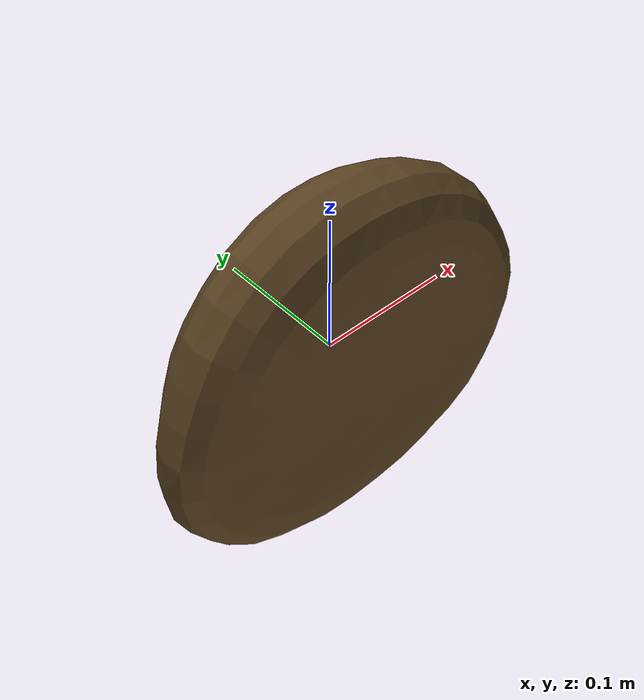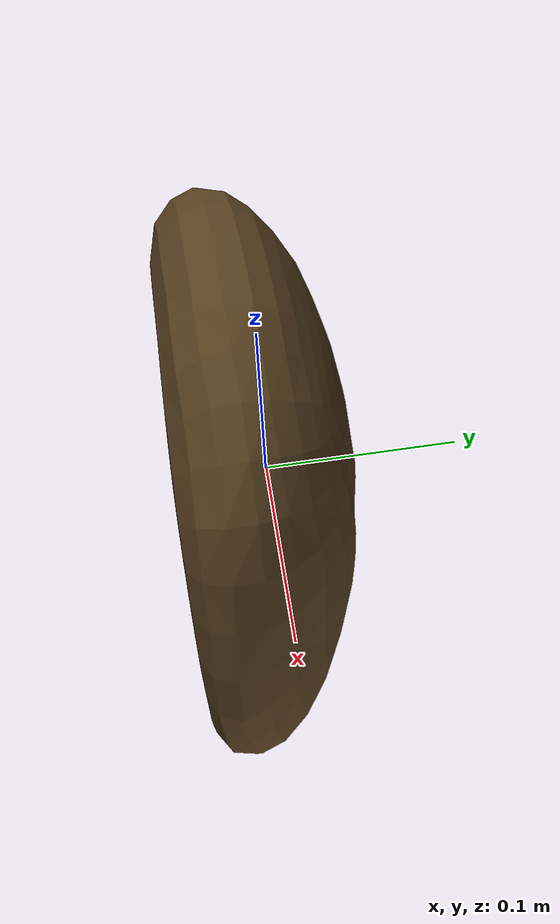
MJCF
<mujoco model="Bread_24">
  <compiler autolimits="true" boundmass="0.01" angle="radian"/>
  <default>
    <default class="/">
      <default class="__VISUAL_MJT__">
        <geom contype="0" conaffinity="0" group="0"/>
      </default>
      <default class="__STRUCTURAL_MJT__">
        <geom contype="8" conaffinity="15" group="4" friction="0.90000000000000002 0.90000000000000002 0.001" solref="0.025000000000000001 1" solimp="0.998 0.998 0.001"/>
      </default>
      <default class="__DYNAMIC_MJT__">
        <geom contype="1" conaffinity="15" group="4" friction="0.90000000000000002 0.90000000000000002 0.001" solref="0.025000000000000001 1" solimp="0.998 0.998 0.001"/>
      </default>
    </default>
  </default>
  <asset>
    <texture name="HoneyBread_Mat3" type="2d" file="HoneyBread_AlbedoTransparency.png"/>
    <material name="material_HoneyBread_Mat3" class="/" texture="HoneyBread_Mat3" specular="0.5" shininess="0.5" rgba="0.46323530000000002 0.35287629999999998 0.1873378 1"/>
    <mesh name="Bread_24_honeybread_c_mesh" class="/" file="Bread_24_honeybread_c_mesh/Bread_24_honeybread_c_mesh.obj" scale="1 1 1"/>
  </asset>
  <worldbody>
    <body name="Bread_24">
      <joint name="Bread_24_free" class="/" type="free" pos="0 0 0" axis="0 0 1" stiffness="0" range="0 0" armature="0" damping="0.10000000000000001" frictionloss="0"/>
      <body name="Bread_24_honeybread_c_mesh" pos="-0.0018699999999999999 0.0052700000000000004 -0.00048000000000000001" quat="1 0 0 0">
        <geom name="Bread_24_honeybread_c_mesh" class="__VISUAL_MJT__" type="mesh" material="material_HoneyBread_Mat3" shellinertia="false" mesh="Bread_24_honeybread_c_mesh"/>
        <geom name="Bread_24_PrimitiveCollider_0" class="__DYNAMIC_MJT__" type="box" size="0.060082379728555679 0.02329116128385067 0.1374029815196991" rgba="0 1 0 1" pos="-0.001865386962890625 -0.025982584804296494 0.000484466552734375" quat="1 0 0 0"/>
        <geom name="Bread_24_PrimitiveCollider_1" class="__DYNAMIC_MJT__" type="box" size="0.047856606543064117 0.010864950716495514 0.12320645898580551" rgba="0 1 0 1" pos="-0.0028361999429762363 0.0081173200160264969 0.000484466552734375" quat="1 0 0 0"/>
        <geom name="Bread_24_PrimitiveCollider_2" class="__DYNAMIC_MJT__" type="box" size="0.036490708589553833 0.0097817219793796539 0.079602658748626709" rgba="0 1 0 1" pos="-0.0028361999429762363 0.028951032087206841 0.000484466552734375" quat="1 0 0 0"/>
        <geom name="Bread_24_PrimitiveCollider_3" class="__DYNAMIC_MJT__" type="box" size="0.060082379728555679 0.02329116128385067 0.13740319013595581" rgba="0 1 0 1" pos="-0.001865386962890625 -0.025982584804296494 0.000484466552734375" quat="0.70710784196853638 0 0.70710575580596924 0"/>
        <geom name="Bread_24_PrimitiveCollider_4" class="__DYNAMIC_MJT__" type="box" size="0.047855980694293976 0.010864950716495514 0.12320663779973984" rgba="0 1 0 1" pos="-0.001865386962890625 0.0081173200160264969 -0.00048637279542163014" quat="0.70710784196853638 0 0.70710575580596924 0"/>
        <geom name="Bread_24_PrimitiveCollider_5" class="__DYNAMIC_MJT__" type="box" size="0.036490708589553833 0.0097817219793796539 0.079604469239711761" rgba="0 1 0 1" pos="-0.001865386962890625 0.028951032087206841 -0.00048637279542163014" quat="0.70710784196853638 0 0.70710575580596924 0"/>
        <geom name="Bread_24_PrimitiveCollider_6" class="__DYNAMIC_MJT__" type="box" size="0.060082379728555679 0.02329116128385067 0.1374029815196991" rgba="0 1 0 1" pos="-0.001865386962890625 -0.025982584804296494 0.000484466552734375" quat="0.92387980222702026 0 0.38268274068832397 0"/>
        <geom name="Bread_24_PrimitiveCollider_7" class="__DYNAMIC_MJT__" type="box" size="0.047855980694293976 0.010864950716495514 0.12320642918348312" rgba="0 1 0 1" pos="-0.0025500999763607979 0.0081173200160264969 -0.00020027277059853077" quat="0.92387980222702026 0 0.38268274068832397 0"/>
        <geom name="Bread_24_PrimitiveCollider_8" class="__DYNAMIC_MJT__" type="box" size="0.036490708589553833 0.0097817219793796539 0.079602658748626709" rgba="0 1 0 1" pos="-0.0025500999763607979 0.028951032087206841 -0.00020027277059853077" quat="0.92387980222702026 0 0.38268274068832397 0"/>
        <geom name="Bread_24_PrimitiveCollider_9" class="__DYNAMIC_MJT__" type="box" size="0.060082379728555679 0.02329116128385067 0.13740319013595581" rgba="0 1 0 1" pos="-0.001865386962890625 -0.025982584804296494 0.000484466552734375" quat="0.38268548250198364 0 0.92387866973876953 0"/>
        <geom name="Bread_24_PrimitiveCollider_10" class="__DYNAMIC_MJT__" type="box" size="0.047855980694293976 0.010864950716495514 0.12320662289857864" rgba="0 1 0 1" pos="-0.001180600025691092 0.0081173200160264969 -0.00020027277059853077" quat="0.38268548250198364 0 0.92387866973876953 0"/>
        <geom name="Bread_24_PrimitiveCollider_11" class="__DYNAMIC_MJT__" type="box" size="0.036490708589553833 0.0097817219793796539 0.079604461789131165" rgba="0 1 0 1" pos="-0.00118090002797544 0.028949454426765442 -0.00019999999494757503" quat="0.38268548250198364 0 0.92387866973876953 0"/>
      </body>
    </body>
  </worldbody>
</mujoco>
